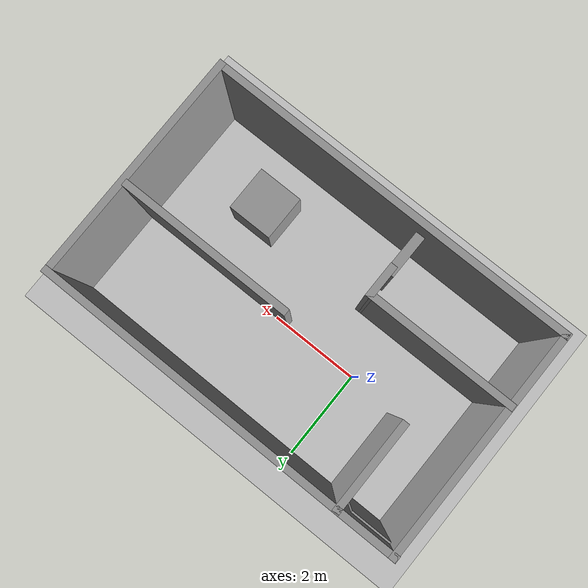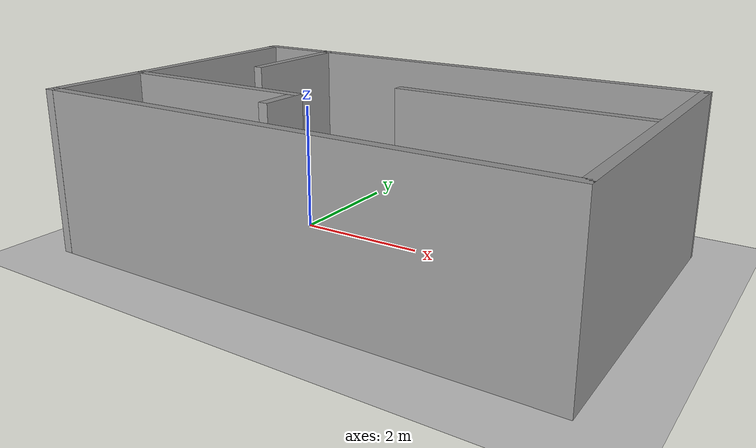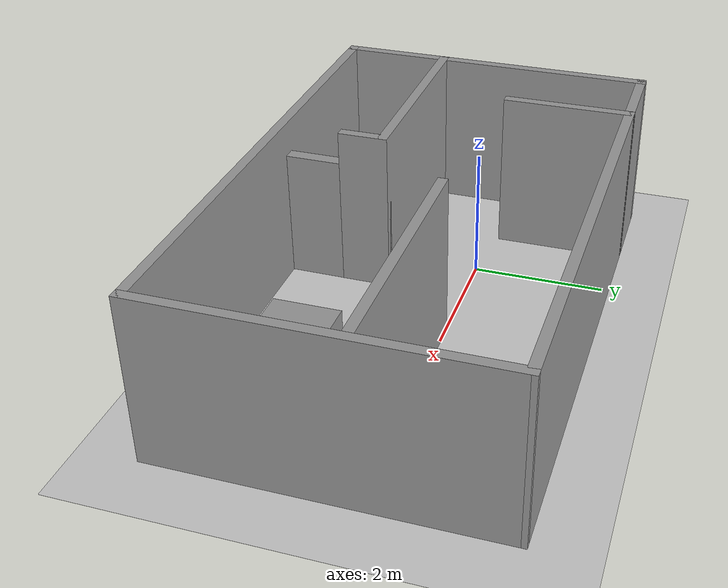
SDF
<sdf version="1.7">
 <world name="default">
  <light name="sun" type="directional">
   <pose>0 0 10 0 -0 0</pose>
   <diffuse>0.8 0.8 0.8 1</diffuse>
   <specular>0.2 0.2 0.2 1</specular>
   <attenuation>
    <range>1000</range>
    <constant>0.9</constant>
    <linear>0.01</linear>
    <quadratic>0.001</quadratic>
   </attenuation>
   <direction>-0.5 0.1 -0.9</direction>
   <spot><inner_angle>0</inner_angle><outer_angle>0</outer_angle><falloff>0</falloff></spot>
  </light>
  <model name="ground_plane">
   <static>1</static>
   <link name="link">
    <collision name="collision">
     <geometry><plane><normal>0 0 1</normal><size>100 100</size></plane></geometry>
     <surface><friction><ode><mu>100</mu><mu2>50</mu2></ode></friction></surface>
    </collision>
    <visual name="visual">
     <cast_shadows>0</cast_shadows>
     <geometry><plane><normal>0 0 1</normal><size>100 100</size></plane></geometry>
     <material>
      <script><uri>file://media/materials/scripts/gazebo.material</uri><name>Gazebo/Grey</name></script>
     </material>
    </visual>
   </link>
  </model>
  <gravity>0 0 -9.8</gravity>
  <magnetic_field>6e-06 2.3e-05 -4.2e-05</magnetic_field>
  <atmosphere type="adiabatic"/>
  <physics type="ode">
   <max_step_size>0.001</max_step_size>
   <real_time_factor>1</real_time_factor>
   <real_time_update_rate>1000</real_time_update_rate>
  </physics>
  <scene><ambient>0.4 0.4 0.4 1</ambient><background>0.7 0.7 0.7 1</background><shadows>1</shadows></scene>
  <audio><device>default</device></audio>
  <spherical_coordinates>
   <surface_model>EARTH_WGS84</surface_model>
   <latitude_deg>0</latitude_deg>
   <longitude_deg>0</longitude_deg>
   <elevation>0</elevation>
   <heading_deg>0</heading_deg>
  </spherical_coordinates>
  <model name="room">
   <pose>1.56444 0.013823 0 0 -0 0</pose>
   <link name="Door_0">
    <collision name="Door_0_Collision">
     <geometry><box><size>0.9 0.17 2</size></box></geometry>
     <pose>0 0 1 0 -0 0</pose>
    </collision>
    <visual name="Door_0_Visual">
     <pose>0 0 1 0 -0 0</pose>
     <geometry><box><size>0.9 0.17 2</size></box></geometry>
     <material>
      <script><uri>file://media/materials/scripts/gazebo.material</uri><name>Gazebo/Grey</name></script>
     </material>
    </visual>
    <pose>-3.39496 1.99285 0 0 -0 0</pose>
   </link>
   <link name="Door_2">
    <collision name="Door_2_Collision">
     <geometry><box><size>0.94 0.2 2</size></box></geometry>
     <pose>0 0 1 0 -0 0</pose>
    </collision>
    <visual name="Door_2_Visual">
     <pose>0 0 1 0 -0 0</pose>
     <geometry><box><size>0.94 0.2 2</size></box></geometry>
     <material>
      <script><uri>file://media/materials/scripts/gazebo.material</uri><name>Gazebo/Grey</name></script>
     </material>
    </visual>
    <pose>-0.834959 -2.30715 0 0 0 -1.57804</pose>
   </link>
   <link name="Wall_0">
    <collision name="Wall_0_Collision">
     <geometry><box><size>5.02083 0.15 2.5</size></box></geometry>
     <pose>0 0 1.25 0 -0 0</pose>
    </collision>
    <visual name="Wall_0_Visual">
     <pose>0 0 1.25 0 -0 0</pose>
     <geometry><box><size>5.02083 0.15 2.5</size></box></geometry>
     <material>
      <script><uri>file://media/materials/scripts/gazebo.material</uri><name>Gazebo/Grey</name></script>
      <ambient>1 1 1 1</ambient>
     </material>
     <meta><layer>0</layer></meta>
    </visual>
    <pose>-3.91496 -0.412149 0 0 -0 -1.5749</pose>
   </link>
   <link name="Wall_1">
    <collision name="Wall_1_Collision">
     <geometry><box><size>0.15 0.15 2.5</size></box></geometry>
     <pose>0 0 1.25 0 -0 0</pose>
    </collision>
    <visual name="Wall_1_Visual">
     <pose>0 0 1.25 0 -0 0</pose>
     <geometry><box><size>0.15 0.15 2.5</size></box></geometry>
     <material>
      <script><uri>file://media/materials/scripts/gazebo.material</uri><name>Gazebo/Grey</name></script>
      <ambient>1 1 1 1</ambient>
     </material>
     <meta><layer>0</layer></meta>
    </visual>
    <pose>-3.92496 -2.84715 0 0 -0 0</pose>
   </link>
   <link name="Wall_10">
    <collision name="Wall_10_Collision">
     <geometry><box><size>3.25 0.15 2.5</size></box></geometry>
     <pose>0 0 1.25 0 -0 0</pose>
    </collision>
    <visual name="Wall_10_Visual">
     <pose>0 0 1.25 0 -0 0</pose>
     <geometry><box><size>3.25 0.15 2.5</size></box></geometry>
     <material>
      <script><uri>file://media/materials/scripts/gazebo.material</uri><name>Gazebo/Grey</name></script>
      <ambient>1 1 1 1</ambient>
     </material>
     <meta><layer>0</layer></meta>
    </visual>
    <pose>-2.35496 -1.25715 0 0 -0 0</pose>
   </link>
   <link name="Wall_12">
    <collision name="Wall_12_Collision">
     <geometry><box><size>0.75 0.15 2.5</size></box></geometry>
     <pose>0 0 1.25 0 -0 0</pose>
    </collision>
    <visual name="Wall_12_Visual">
     <pose>0 0 1.25 0 -0 0</pose>
     <geometry><box><size>0.75 0.15 2.5</size></box></geometry>
     <material>
      <script><uri>file://media/materials/scripts/gazebo.material</uri><name>Gazebo/Grey</name></script>
      <ambient>1 1 1 1</ambient>
     </material>
     <meta><layer>0</layer></meta>
    </visual>
    <pose>-0.804959 -1.55715 0 0 -0 -1.5708</pose>
   </link>
   <link name="Wall_14">
    <collision name="Wall_14_Collision">
     <geometry><box><size>3.75 0.15 2.5</size></box></geometry>
     <pose>0 0 1.25 0 -0 0</pose>
    </collision>
    <visual name="Wall_14_Visual">
     <pose>0 0 1.25 0 -0 0</pose>
     <geometry><box><size>3.75 0.15 2.5</size></box></geometry>
     <material>
      <script><uri>file://media/materials/scripts/gazebo.material</uri><name>Gazebo/Grey</name></script>
      <ambient>1 1 1 1</ambient>
     </material>
     <meta><layer>0</layer></meta>
    </visual>
    <pose>2.01504 -0.077149 0 0 -0 0</pose>
   </link>
   <link name="Wall_2">
    <collision name="Wall_2_Collision">
     <geometry><box><size>8 0.15 2.5</size></box></geometry>
     <pose>0 0 1.25 0 -0 0</pose>
    </collision>
    <visual name="Wall_2_Visual">
     <pose>0 0 1.25 0 -0 0</pose>
     <geometry><box><size>8 0.15 2.5</size></box></geometry>
     <material>
      <script><uri>file://media/materials/scripts/gazebo.material</uri><name>Gazebo/Grey</name></script>
      <ambient>1 1 1 1</ambient>
     </material>
     <meta><layer>0</layer></meta>
    </visual>
    <pose>4.1e-05 -2.84715 0 0 -0 0</pose>
   </link>
   <link name="Wall_3">
    <collision name="Wall_3_Collision">
     <geometry><box><size>5 0.15 2.5</size></box></geometry>
     <pose>0 0 1.25 0 -0 0</pose>
    </collision>
    <visual name="Wall_3_Visual">
     <pose>0 0 1.25 0 -0 0</pose>
     <geometry><box><size>5 0.15 2.5</size></box></geometry>
     <material>
      <script><uri>file://media/materials/scripts/gazebo.material</uri><name>Gazebo/Grey</name></script>
      <ambient>1 1 1 1</ambient>
     </material>
     <meta><layer>0</layer></meta>
    </visual>
    <pose>3.92504 -0.422149 0 0 -0 1.5708</pose>
   </link>
   <link name="Wall_4">
    <collision name="Wall_4_Collision">
     <geometry><box><size>6.73003 0.15 2.5</size></box></geometry>
     <pose>0 0 1.25 0 -0 0</pose>
    </collision>
    <visual name="Wall_4_Visual">
     <pose>0 0 1.25 0 -0 0</pose>
     <geometry><box><size>6.73003 0.15 2.5</size></box></geometry>
     <material>
      <script><uri>file://media/materials/scripts/gazebo.material</uri><name>Gazebo/Grey</name></script>
      <ambient>1 1 1 1</ambient>
     </material>
     <meta><layer>0</layer></meta>
    </visual>
    <pose>0.635041 2.01285 0 0 -0 3.13855</pose>
   </link>
   <link name="Wall_6">
    <collision name="Wall_6_Collision">
     <geometry><box><size>1.4 0.15 2.5</size></box></geometry>
     <pose>0 0 1.25 0 -0 0</pose>
    </collision>
    <visual name="Wall_6_Visual">
     <pose>0 0 1.25 0 -0 0</pose>
     <geometry><box><size>1.4 0.15 2.5</size></box></geometry>
     <material>
      <script><uri>file://media/materials/scripts/gazebo.material</uri><name>Gazebo/Grey</name></script>
      <ambient>1 1 1 1</ambient>
     </material>
     <meta><layer>0</layer></meta>
    </visual>
    <pose>-3.28996 2.02285 0 0 -0 -3.14159</pose>
   </link>
   <link name="Wall_8">
    <collision name="Wall_8_Collision">
     <geometry><box><size>2 0.15 2.5</size></box></geometry>
     <pose>0 0 1.25 0 -0 0</pose>
    </collision>
    <visual name="Wall_8_Visual">
     <pose>0 0 1.25 0 -0 0</pose>
     <geometry><box><size>2 0.15 2.5</size></box></geometry>
     <material>
      <script><uri>file://media/materials/scripts/gazebo.material</uri><name>Gazebo/Grey</name></script>
      <ambient>1 1 1 1</ambient>
     </material>
     <meta><layer>0</layer></meta>
    </visual>
    <pose>-2.66496 1.09785 0 0 -0 -1.5708</pose>
   </link>
   <static>1</static>
  </model>
  <model name="unit_box">
   <pose>3.54061 -1.58207 0.5 0 -0 0</pose>
   <link name="link">
    <inertial>
     <mass>1</mass>
     <inertia>
      <ixx>0.166667</ixx>
      <ixy>0</ixy>
      <ixz>0</ixz>
      <iyy>0.166667</iyy>
      <iyz>0</iyz>
      <izz>0.166667</izz>
     </inertia>
    </inertial>
    <collision name="collision"><geometry><box><size>1 1 1</size></box></geometry></collision>
    <visual name="visual">
     <geometry><box><size>1 1 1</size></box></geometry>
     <material>
      <script><name>Gazebo/Grey</name><uri>file://media/materials/scripts/gazebo.material</uri></script>
     </material>
    </visual>
   </link>
  </model>
 </world>
</sdf>
